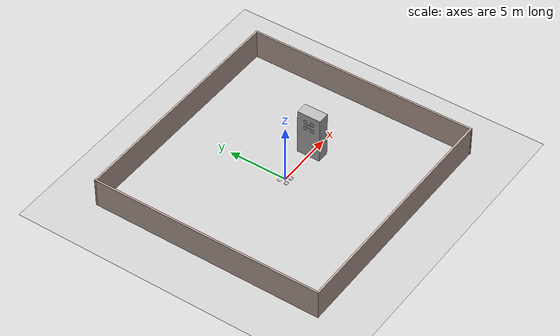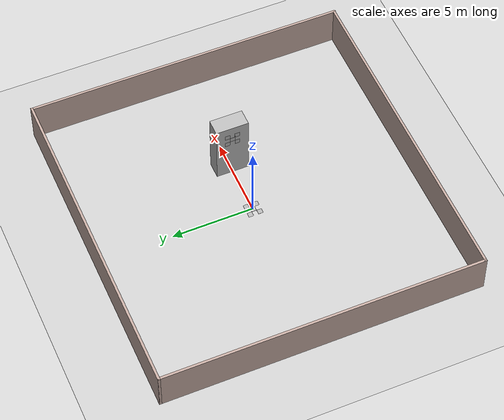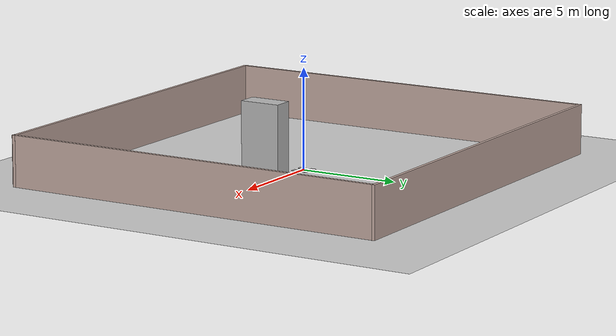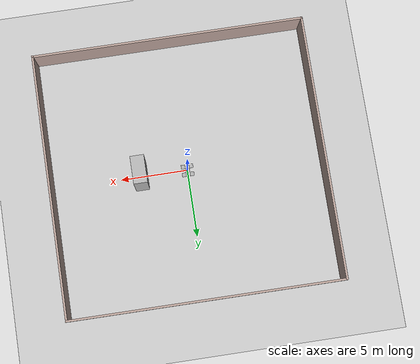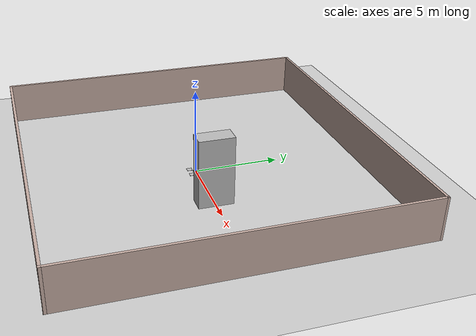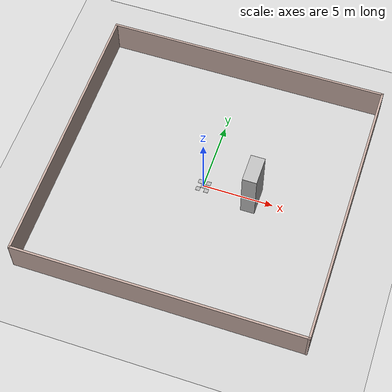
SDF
<sdf version="1.4">
 <world name="Localization">
  <include><uri>model://ground_plane</uri></include>
  <include><uri>model://sun</uri></include>
  <include><uri>model://Lo_Tag</uri></include>
  <plugin name="ros_interface_plugin" filename="librotors_gazebo_ros_interface_plugin.so"/>
  <plugin name="ros_link_attacher_plugin" filename="libgazebo_ros_link_attacher.so"/>
  <spherical_coordinates>
   <surface_model>EARTH_WGS84</surface_model>
   <latitude_deg>47.3667</latitude_deg>
   <longitude_deg>8.5500</longitude_deg>
   <elevation>500.0</elevation>
   <heading_deg>0</heading_deg>
  </spherical_coordinates>
  <physics type="ode">
   <ode>
    <solver><type>quick</type><iters>1000</iters><sor>1.3</sor></solver>
    <constraints>
     <cfm>0</cfm>
     <erp>0.2</erp>
     <contact_max_correcting_vel>100</contact_max_correcting_vel>
     <contact_surface_layer>0.001</contact_surface_layer>
    </constraints>
   </ode>
   <max_step_size>0.01</max_step_size>
   <real_time_factor>1</real_time_factor>
   <real_time_update_rate>100</real_time_update_rate>
   <gravity>0 0 -9.8</gravity>
  </physics>
  <model name="Room1">
   <pose>0.052821 0.021612 0 0 -0 0</pose>
   <link name="Wall_5">
    <collision name="Wall_5_Collision">
     <geometry><box><size>20.2375 0.15 2.5</size></box></geometry>
     <pose>0 0 1.25 0 -0 0</pose>
    </collision>
    <visual name="Wall_5_Visual">
     <pose>0 0 1.25 0 -0 0</pose>
     <geometry><box><size>20.2375 0.15 2.5</size></box></geometry>
     <material>
      <script><uri>file://media/materials/scripts/gazebo.material</uri><name>Gazebo/Grey</name></script>
      <ambient>0.760784 0.662745 0.627451 1</ambient>
     </material>
     <meta><layer>0</layer></meta>
    </visual>
    <pose>0.00159 9.72367 0 0 -0 -0.001065</pose>
   </link>
   <link name="Wall_6">
    <collision name="Wall_6_Collision">
     <geometry><box><size>19.5759 0.15 2.5</size></box></geometry>
     <pose>0 0 1.25 0 -0 0</pose>
    </collision>
    <visual name="Wall_6_Visual">
     <pose>0 0 1.25 0 -0 0</pose>
     <geometry><box><size>19.5759 0.15 2.5</size></box></geometry>
     <material>
      <script><uri>file://media/materials/scripts/gazebo.material</uri><name>Gazebo/Grey</name></script>
      <ambient>0.760784 0.662745 0.627451 1</ambient>
     </material>
     <meta><layer>0</layer></meta>
    </visual>
    <pose>10.0461 -0.021509 0 0 -0 -1.57071</pose>
   </link>
   <link name="Wall_7">
    <collision name="Wall_7_Collision">
     <geometry><box><size>20.2388 0.15 2.5</size></box></geometry>
     <pose>0 0 1.25 0 -0 0</pose>
    </collision>
    <visual name="Wall_7_Visual">
     <pose>0 0 1.25 0 -0 0</pose>
     <geometry><box><size>20.2388 0.15 2.5</size></box></geometry>
     <material>
      <script><uri>file://media/materials/scripts/gazebo.material</uri><name>Gazebo/Grey</name></script>
      <ambient>0.760784 0.662745 0.627451 1</ambient>
     </material>
     <meta><layer>0</layer></meta>
    </visual>
    <pose>0.002679 -9.71325 0 0 -0 -3.14155</pose>
   </link>
   <link name="Wall_8">
    <collision name="Wall_8_Collision">
     <geometry><box><size>19.5906 0.15 2.5</size></box></geometry>
     <pose>0 0 1.25 0 -0 0</pose>
    </collision>
    <visual name="Wall_8_Visual">
     <pose>0 0 1.25 0 -0 0</pose>
     <geometry><box><size>19.5906 0.15 2.5</size></box></geometry>
     <material>
      <script><uri>file://media/materials/scripts/gazebo.material</uri><name>Gazebo/Grey</name></script>
      <ambient>0.760784 0.662745 0.627451 1</ambient>
     </material>
     <meta><layer>0</layer></meta>
    </visual>
    <pose>-10.0446 0.006648 0 0 -0 1.57054</pose>
   </link>
   <static>1</static>
  </model>
 </world>
</sdf>

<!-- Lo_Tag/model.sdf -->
<sdf version="1.4">

	<model name='localization_tags'>

		<static>True</static>

		<link name="tag_0">

			<pose>0 0 0 0 1.5713 1.5713</pose>

			<inertial>
	        	<mass>0.1</mass>

	        	<inertia>
					<ixx>0.0166667</ixx>
					<ixy>0</ixy>
					<ixz>0</ixz>
					<iyy>0.0166667</iyy>
					<iyz>0</iyz>
					<izz>0.0166667</izz>
        		</inertia>

        		<pose frame=''>0 0 0 0 -0 0</pose>
      		</inertial>

			<pose frame=''>0 0 0 0 -0 0</pose>
			<gravity>1</gravity>
			<self_collide>0</self_collide>
			<kinematic>0</kinematic>
			<enable_wind>0</enable_wind>

			<visual name='visual_0'>
				<pose frame=''>0 0 0 0 -0 0</pose>

		        <geometry>
		        	<box>
		        	<size>0.01 0.3 0.3</size>
		        	</box>
		        </geometry>

		        <material>
		        	<lighting>0</lighting>

		        	<script>
		        		<uri>models://media/materials/scripts/Apriltag.material</uri>
		        		<name>Apriltag/id0</name>
		          	</script>

		        	<shader type='vertex'>
		        		<normal_map>__default__</normal_map>
		          	</shader>

		        	<ambient>0.3 0.3 0.3 1</ambient>
		        	<diffuse>0.7 0.7 0.7 1</diffuse>
		        	<specular>0.01 0.01 0.01 1</specular>
		        	<emissive>0 0 0 1</emissive>
		        </material>

		        <transparency>0</transparency>
		        <cast_shadows>1</cast_shadows>
			</visual>

			<collision name='collision_0'>
				<laser_retro>0</laser_retro>
        		<max_contacts>10</max_contacts>
        		<pose frame=''>0 0 0 0 -0 0</pose>

		        <geometry>
		        	<box>
		        		<size>0.01 0.3 0.3</size>
		        	</box>
		        </geometry>

		        <surface>
		        	<friction>
		            	<ode>
		            		<mu>1</mu>
		            		<mu2>1</mu2>
		            		<fdir1>0 0 0</fdir1>
		            		<slip1>0</slip1>
		            		<slip2>0</slip2>
		            	</ode>

		           		<torsional>
		            		<coefficient>1</coefficient>
	            			<patch_radius>0</patch_radius>
	            			<surface_radius>0</surface_radius>
	            			<use_patch_radius>1</use_patch_radius>

	            			<ode>
		                		<slip>0</slip>
		              		</ode>
		            	</torsional>
		          	</friction>

		        	<bounce>
		            	<restitution_coefficient>0</restitution_coefficient>
		            	<threshold>1e+06</threshold>
		        	</bounce>

		        	<contact>
		            	<collide_without_contact>0</collide_without_contact>
		            	<collide_without_contact_bitmask>1</collide_without_contact_bitmask>
		            	<collide_bitmask>1</collide_bitmask>

		            	<ode>
		            		<soft_cfm>0</soft_cfm>
		            		<soft_erp>0.2</soft_erp>
		            		<kp>1e+13</kp>
		            		<kd>1</kd>
		            		<max_vel>0.01</max_vel>
		            		<min_depth>0</min_depth>
		            	</ode>

			            <bullet>
			            	<split_impulse>1</split_impulse>
			            	<split_impulse_penetration_threshold>-0.01</split_impulse_penetration_threshold>
			            	<soft_cfm>0</soft_cfm>
			            	<soft_erp>0.2</soft_erp>
			            	<kp>1e+13</kp>
			            	<kd>1</kd>
			            </bullet>
		        	</contact>
		        </surface>
		    </collision>
		</link>

		<link name="tag_1">

			<pose>0.3 -0.3 0 0 1.5713 1.5713</pose>

			<inertial>
	        	<mass>0.1</mass>

	        	<inertia>
					<ixx>0.0166667</ixx>
					<ixy>0</ixy>
					<ixz>0</ixz>
					<iyy>0.0166667</iyy>
					<iyz>0</iyz>
					<izz>0.0166667</izz>
        		</inertia>

        		<pose frame=''>0 0 0 0 -0 0</pose>
      		</inertial>

			<pose frame=''>0 0 0 0 -0 0</pose>
			<gravity>1</gravity>
			<self_collide>0</self_collide>
			<kinematic>0</kinematic>
			<enable_wind>0</enable_wind>

 			<visual name='visual_1'>
				<pose frame=''>0 0 0 0 -0 0</pose>

		        <geometry>
		        	<box>
		        	<size>0.01 0.3 0.3</size>
		        	</box>
		        </geometry>

		        <material>
		        	<lighting>0</lighting>

		        	<script>
		        		<uri>models://media/materials/scripts/Apriltag.material</uri>
		        		<name>Apriltag/id1</name>
		          	</script>

		        	<shader type='vertex'>
		        		<normal_map>__default__</normal_map>
		          	</shader>

		        	<ambient>0.3 0.3 0.3 1</ambient>
		        	<diffuse>0.7 0.7 0.7 1</diffuse>
		        	<specular>0.01 0.01 0.01 1</specular>
		        	<emissive>0 0 0 1</emissive>
		        </material>

		        <transparency>0</transparency>
		        <cast_shadows>1</cast_shadows>
			</visual>

			<collision name='collision_1'>
				<laser_retro>0</laser_retro>
        		<max_contacts>10</max_contacts>
        		<pose frame=''>0 0 0 0 -0 0</pose>

		        <geometry>
		        	<box>
		        		<size>0.01 0.3 0.3</size>
		        	</box>
		        </geometry>

		        <surface>
		        	<friction>
		            	<ode>
		            		<mu>1</mu>
		            		<mu2>1</mu2>
		            		<fdir1>0 0 0</fdir1>
		            		<slip1>0</slip1>
		            		<slip2>0</slip2>
		            	</ode>

		           		<torsional>
		            		<coefficient>1</coefficient>
	            			<patch_radius>0</patch_radius>
	            			<surface_radius>0</surface_radius>
	            			<use_patch_radius>1</use_patch_radius>

	            			<ode>
		                		<slip>0</slip>
		              		</ode>
		            	</torsional>
		          	</friction>

		        	<bounce>
		            	<restitution_coefficient>0</restitution_coefficient>
		            	<threshold>1e+06</threshold>
		        	</bounce>

		        	<contact>
		            	<collide_without_contact>0</collide_without_contact>
		            	<collide_without_contact_bitmask>1</collide_without_contact_bitmask>
		            	<collide_bitmask>1</collide_bitmask>

		            	<ode>
		            		<soft_cfm>0</soft_cfm>
		            		<soft_erp>0.2</soft_erp>
		            		<kp>1e+13</kp>
		            		<kd>1</kd>
		            		<max_vel>0.01</max_vel>
		            		<min_depth>0</min_depth>
		            	</ode>

			            <bullet>
			            	<split_impulse>1</split_impulse>
			            	<split_impulse_penetration_threshold>-0.01</split_impulse_penetration_threshold>
			            	<soft_cfm>0</soft_cfm>
			            	<soft_erp>0.2</soft_erp>
			            	<kp>1e+13</kp>
			            	<kd>1</kd>
			            </bullet>
		        	</contact>
		        </surface>
		    </collision>
		</link>

		<link name="tag_2">

			<pose>0.3 0.3 0 0 1.5713 1.5713</pose>

			<inertial>
	        	<mass>0.1</mass>

	        	<inertia>
					<ixx>0.0166667</ixx>
					<ixy>0</ixy>
					<ixz>0</ixz>
					<iyy>0.0166667</iyy>
					<iyz>0</iyz>
					<izz>0.0166667</izz>
        		</inertia>

        		<pose frame=''>0 0 0 0 -0 0</pose>
      		</inertial>

			<pose frame=''>0 0 0 0 -0 0</pose>
			<gravity>1</gravity>
			<self_collide>0</self_collide>
			<kinematic>0</kinematic>
			<enable_wind>0</enable_wind>

			<visual name='visual_2'>
				<pose frame=''>0 0 0 0 -0 0</pose>

		        <geometry>
		        	<box>
		        	<size>0.01 0.3 0.3</size>
		        	</box>
		        </geometry>

		        <material>
		        	<lighting>0</lighting>

		        	<script>
		        		<uri>models://media/materials/scripts/Apriltag.material</uri>
		        		<name>Apriltag/id2</name>
		          	</script>

		        	<shader type='vertex'>
		        		<normal_map>__default__</normal_map>
		          	</shader>

		        	<ambient>0.3 0.3 0.3 1</ambient>
		        	<diffuse>0.7 0.7 0.7 1</diffuse>
		        	<specular>0.01 0.01 0.01 1</specular>
		        	<emissive>0 0 0 1</emissive>
		        </material>

		        <transparency>0</transparency>
		        <cast_shadows>1</cast_shadows>
			</visual>

			<collision name='collision_2'>
				<laser_retro>0</laser_retro>
        		<max_contacts>10</max_contacts>
        		<pose frame=''>0 0 0 0 -0 0</pose>

		        <geometry>
		        	<box>
		        		<size>0.01 0.3 0.3</size>
		        	</box>
		        </geometry>

		        <surface>
		        	<friction>
		            	<ode>
		            		<mu>1</mu>
		            		<mu2>1</mu2>
		            		<fdir1>0 0 0</fdir1>
		            		<slip1>0</slip1>
		            		<slip2>0</slip2>
		            	</ode>

		           		<torsional>
		            		<coefficient>1</coefficient>
	            			<patch_radius>0</patch_radius>
	            			<surface_radius>0</surface_radius>
	            			<use_patch_radius>1</use_patch_radius>

	            			<ode>
		                		<slip>0</slip>
		              		</ode>
		            	</torsional>
		          	</friction>

		        	<bounce>
		            	<restitution_coefficient>0</restitution_coefficient>
		            	<threshold>1e+06</threshold>
		        	</bounce>

		        	<contact>
		            	<collide_without_contact>0</collide_without_contact>
		            	<collide_without_contact_bitmask>1</collide_without_contact_bitmask>
		            	<collide_bitmask>1</collide_bitmask>

		            	<ode>
		            		<soft_cfm>0</soft_cfm>
		            		<soft_erp>0.2</soft_erp>
		            		<kp>1e+13</kp>
		            		<kd>1</kd>
		            		<max_vel>0.01</max_vel>
		            		<min_depth>0</min_depth>
		            	</ode>

			            <bullet>
			            	<split_impulse>1</split_impulse>
			            	<split_impulse_penetration_threshold>-0.01</split_impulse_penetration_threshold>
			            	<soft_cfm>0</soft_cfm>
			            	<soft_erp>0.2</soft_erp>
			            	<kp>1e+13</kp>
			            	<kd>1</kd>
			            </bullet>
		        	</contact>
		        </surface>
		    </collision>
		</link>

		<link name="tag_3">

			<pose>-0.3 0.3 0 0 1.5713 1.5713</pose>

			<inertial>
	        	<mass>0.1</mass>

	        	<inertia>
					<ixx>0.0166667</ixx>
					<ixy>0</ixy>
					<ixz>0</ixz>
					<iyy>0.0166667</iyy>
					<iyz>0</iyz>
					<izz>0.0166667</izz>
        		</inertia>

        		<pose frame=''>0 0 0 0 -0 0</pose>
      		</inertial>

			<pose frame=''>0 0 0 0 -0 0</pose>
			<gravity>1</gravity>
			<self_collide>0</self_collide>
			<kinematic>0</kinematic>
			<enable_wind>0</enable_wind>

			<visual name='visual_3'>
				<pose frame=''>0 0 0 0 -0 0</pose>

		        <geometry>
		        	<box>
		        	<size>0.01 0.3 0.3</size>
		        	</box>
		        </geometry>

		        <material>
		        	<lighting>0</lighting>

		        	<script>
		        		<uri>models://media/materials/scripts/Apriltag.material</uri>
		        		<name>Apriltag/id3</name>
		          	</script>

		        	<shader type='vertex'>
		        		<normal_map>__default__</normal_map>
		          	</shader>

		        	<ambient>0.3 0.3 0.3 1</ambient>
		        	<diffuse>0.7 0.7 0.7 1</diffuse>
		        	<specular>0.01 0.01 0.01 1</specular>
		        	<emissive>0 0 0 1</emissive>
		        </material>

		        <transparency>0</transparency>
		        <cast_shadows>1</cast_shadows>
			</visual>

			<collision name='collision_3'>
				<laser_retro>0</laser_retro>
        		<max_contacts>10</max_contacts>
        		<pose frame=''>0 0 0 0 -0 0</pose>

		        <geometry>
		        	<box>
		        		<size>0.01 0.3 0.3</size>
		        	</box>
		        </geometry>

		        <surface>
		        	<friction>
		            	<ode>
		            		<mu>1</mu>
		            		<mu2>1</mu2>
		            		<fdir1>0 0 0</fdir1>
		            		<slip1>0</slip1>
		            		<slip2>0</slip2>
		            	</ode>

		           		<torsional>
		            		<coefficient>1</coefficient>
	            			<patch_radius>0</patch_radius>
	            			<surface_radius>0</surface_radius>
	            			<use_patch_radius>1</use_patch_radius>

	            			<ode>
		                		<slip>0</slip>
		              		</ode>
		            	</torsional>
		          	</friction>

		        	<bounce>
		            	<restitution_coefficient>0</restitution_coefficient>
		            	<threshold>1e+06</threshold>
		        	</bounce>

		        	<contact>
		            	<collide_without_contact>0</collide_without_contact>
		            	<collide_without_contact_bitmask>1</collide_without_contact_bitmask>
		            	<collide_bitmask>1</collide_bitmask>

		            	<ode>
		            		<soft_cfm>0</soft_cfm>
		            		<soft_erp>0.2</soft_erp>
		            		<kp>1e+13</kp>
		            		<kd>1</kd>
		            		<max_vel>0.01</max_vel>
		            		<min_depth>0</min_depth>
		            	</ode>

			            <bullet>
			            	<split_impulse>1</split_impulse>
			            	<split_impulse_penetration_threshold>-0.01</split_impulse_penetration_threshold>
			            	<soft_cfm>0</soft_cfm>
			            	<soft_erp>0.2</soft_erp>
			            	<kp>1e+13</kp>
			            	<kd>1</kd>
			            </bullet>
		        	</contact>
		        </surface>
		    </collision>
		</link>

		<link name="tag_4">

			<pose>-0.3 -0.3 0 0 1.5713 1.5713</pose>

			<inertial>
	        	<mass>0.1</mass>

	        	<inertia>
					<ixx>0.0166667</ixx>
					<ixy>0</ixy>
					<ixz>0</ixz>
					<iyy>0.0166667</iyy>
					<iyz>0</iyz>
					<izz>0.0166667</izz>
        		</inertia>

        		<pose frame=''>0 0 0 0 -0 0</pose>
      		</inertial>

			<pose frame=''>0 0 0 0 -0 0</pose>
			<gravity>1</gravity>
			<self_collide>0</self_collide>
			<kinematic>0</kinematic>
			<enable_wind>0</enable_wind>

			<visual name='visual_4'>
				<pose frame=''>0 0 0 0 -0 0</pose>

		        <geometry>
		        	<box>
		        	<size>0.01 0.3 0.3</size>
		        	</box>
		        </geometry>

		        <material>
		        	<lighting>0</lighting>

		        	<script>
		        		<uri>models://media/materials/scripts/Apriltag.material</uri>
		        		<name>Apriltag/id4</name>
		          	</script>

		        	<shader type='vertex'>
		        		<normal_map>__default__</normal_map>
		          	</shader>

		        	<ambient>0.3 0.3 0.3 1</ambient>
		        	<diffuse>0.7 0.7 0.7 1</diffuse>
		        	<specular>0.01 0.01 0.01 1</specular>
		        	<emissive>0 0 0 1</emissive>
		        </material>

		        <transparency>0</transparency>
		        <cast_shadows>1</cast_shadows>
			</visual>

			<collision name='collision_4'>
				<laser_retro>0</laser_retro>
        		<max_contacts>10</max_contacts>
        		<pose frame=''>0 0 0 0 -0 0</pose>

		        <geometry>
		        	<box>
		        		<size>0.01 0.3 0.3</size>
		        	</box>
		        </geometry>

		        <surface>
		        	<friction>
		            	<ode>
		            		<mu>1</mu>
		            		<mu2>1</mu2>
		            		<fdir1>0 0 0</fdir1>
		            		<slip1>0</slip1>
		            		<slip2>0</slip2>
		            	</ode>

		           		<torsional>
		            		<coefficient>1</coefficient>
	            			<patch_radius>0</patch_radius>
	            			<surface_radius>0</surface_radius>
	            			<use_patch_radius>1</use_patch_radius>

	            			<ode>
		                		<slip>0</slip>
		              		</ode>
		            	</torsional>
		          	</friction>

		        	<bounce>
		            	<restitution_coefficient>0</restitution_coefficient>
		            	<threshold>1e+06</threshold>
		        	</bounce>

		        	<contact>
		            	<collide_without_contact>0</collide_without_contact>
		            	<collide_without_contact_bitmask>1</collide_without_contact_bitmask>
		            	<collide_bitmask>1</collide_bitmask>

		            	<ode>
		            		<soft_cfm>0</soft_cfm>
		            		<soft_erp>0.2</soft_erp>
		            		<kp>1e+13</kp>
		            		<kd>1</kd>
		            		<max_vel>0.01</max_vel>
		            		<min_depth>0</min_depth>
		            	</ode>

			            <bullet>
			            	<split_impulse>1</split_impulse>
			            	<split_impulse_penetration_threshold>-0.01</split_impulse_penetration_threshold>
			            	<soft_cfm>0</soft_cfm>
			            	<soft_erp>0.2</soft_erp>
			            	<kp>1e+13</kp>
			            	<kd>1</kd>
			            </bullet>
		        	</contact>
		        </surface>
		    </collision>
		</link>

		<link name="tag_5">

			<pose>3 0 3 -1.5713 0 0</pose>

			<inertial>
	        	<mass>0.1</mass>

	        	<inertia>
					<ixx>0.0166667</ixx>
					<ixy>0</ixy>
					<ixz>0</ixz>
					<iyy>0.0166667</iyy>
					<iyz>0</iyz>
					<izz>0.0166667</izz>
        		</inertia>

        		<pose frame=''>0 0 0 0 -0 0</pose>
      		</inertial>

			<pose frame=''>0 0 0 0 -0 0</pose>
			<gravity>1</gravity>
			<self_collide>0</self_collide>
			<kinematic>0</kinematic>
			<enable_wind>0</enable_wind>

			<visual name='visual_5'>
				<pose frame=''>0 0 0 0 -0 0</pose>

		        <geometry>
		        	<box>
		        	<size>0.01 0.3 0.3</size>
		        	</box>
		        </geometry>

		        <material>
		        	<lighting>0</lighting>

		        	<script>
		        		<uri>models://media/materials/scripts/Apriltag.material</uri>
		        		<name>Apriltag/id5</name>
		          	</script>

		        	<shader type='vertex'>
		        		<normal_map>__default__</normal_map>
		          	</shader>

		        	<ambient>0.3 0.3 0.3 1</ambient>
		        	<diffuse>0.7 0.7 0.7 1</diffuse>
		        	<specular>0.01 0.01 0.01 1</specular>
		        	<emissive>0 0 0 1</emissive>
		        </material>

		        <transparency>0</transparency>
		        <cast_shadows>1</cast_shadows>
			</visual>

			<collision name='collision_5'>
				<laser_retro>0</laser_retro>
        		<max_contacts>10</max_contacts>
        		<pose frame=''>0 0 0 0 -0 0</pose>

		        <geometry>
		        	<box>
		        		<size>0.01 0.3 0.3</size>
		        	</box>
		        </geometry>

		        <surface>
		        	<friction>
		            	<ode>
		            		<mu>1</mu>
		            		<mu2>1</mu2>
		            		<fdir1>0 0 0</fdir1>
		            		<slip1>0</slip1>
		            		<slip2>0</slip2>
		            	</ode>

		           		<torsional>
		            		<coefficient>1</coefficient>
	            			<patch_radius>0</patch_radius>
	            			<surface_radius>0</surface_radius>
	            			<use_patch_radius>1</use_patch_radius>

	            			<ode>
		                		<slip>0</slip>
		              		</ode>
		            	</torsional>
		          	</friction>

		        	<bounce>
		            	<restitution_coefficient>0</restitution_coefficient>
		            	<threshold>1e+06</threshold>
		        	</bounce>

		        	<contact>
		            	<collide_without_contact>0</collide_without_contact>
		            	<collide_without_contact_bitmask>1</collide_without_contact_bitmask>
		            	<collide_bitmask>1</collide_bitmask>

		            	<ode>
		            		<soft_cfm>0</soft_cfm>
		            		<soft_erp>0.2</soft_erp>
		            		<kp>1e+13</kp>
		            		<kd>1</kd>
		            		<max_vel>0.01</max_vel>
		            		<min_depth>0</min_depth>
		            	</ode>

			            <bullet>
			            	<split_impulse>1</split_impulse>
			            	<split_impulse_penetration_threshold>-0.01</split_impulse_penetration_threshold>
			            	<soft_cfm>0</soft_cfm>
			            	<soft_erp>0.2</soft_erp>
			            	<kp>1e+13</kp>
			            	<kd>1</kd>
			            </bullet>
		        	</contact>
		        </surface>
		    </collision>
		</link>
 -->
		<link name="tag_6">

			<pose>3 -0.3 3.3 -1.5713 0 0</pose>

			<inertial>
	        	<mass>0.1</mass>

	        	<inertia>
					<ixx>0.0166667</ixx>
					<ixy>0</ixy>
					<ixz>0</ixz>
					<iyy>0.0166667</iyy>
					<iyz>0</iyz>
					<izz>0.0166667</izz>
        		</inertia>

        		<pose frame=''>0 0 0 0 -0 0</pose>
      		</inertial>

			<pose frame=''>0 0 0 0 -0 0</pose>
			<gravity>1</gravity>
			<self_collide>0</self_collide>
			<kinematic>0</kinematic>
			<enable_wind>0</enable_wind>

			<visual name='visual_6'>
				<pose frame=''>0 0 0 0 -0 0</pose>

		        <geometry>
		        	<box>
		        	<size>0.01 0.3 0.3</size>
		        	</box>
		        </geometry>

		        <material>
		        	<lighting>0</lighting>

		        	<script>
		        		<uri>models://media/materials/scripts/Apriltag.material</uri>
		        		<name>Apriltag/id6</name>
		          	</script>

		        	<shader type='vertex'>
		        		<normal_map>__default__</normal_map>
		          	</shader>

		        	<ambient>0.3 0.3 0.3 1</ambient>
		        	<diffuse>0.7 0.7 0.7 1</diffuse>
		        	<specular>0.01 0.01 0.01 1</specular>
		        	<emissive>0 0 0 1</emissive>
		        </material>

		        <transparency>0</transparency>
		        <cast_shadows>1</cast_shadows>
			</visual>

			<collision name='collision_6'>
				<laser_retro>0</laser_retro>
        		<max_contacts>10</max_contacts>
        		<pose frame=''>0 0 0 0 -0 0</pose>

		        <geometry>
		        	<box>
		        		<size>0.01 0.3 0.3</size>
		        	</box>
		        </geometry>

		        <surface>
		        	<friction>
		            	<ode>
		            		<mu>1</mu>
		            		<mu2>1</mu2>
		            		<fdir1>0 0 0</fdir1>
		            		<slip1>0</slip1>
		            		<slip2>0</slip2>
		            	</ode>

		           		<torsional>
		            		<coefficient>1</coefficient>
	            			<patch_radius>0</patch_radius>
	            			<surface_radius>0</surface_radius>
	            			<use_patch_radius>1</use_patch_radius>

	            			<ode>
		                		<slip>0</slip>
		              		</ode>
		            	</torsional>
		          	</friction>

		        	<bounce>
		            	<restitution_coefficient>0</restitution_coefficient>
		            	<threshold>1e+06</threshold>
		        	</bounce>

		        	<contact>
		            	<collide_without_contact>0</collide_without_contact>
		            	<collide_without_contact_bitmask>1</collide_without_contact_bitmask>
		            	<collide_bitmask>1</collide_bitmask>

		            	<ode>
		            		<soft_cfm>0</soft_cfm>
		            		<soft_erp>0.2</soft_erp>
		            		<kp>1e+13</kp>
		            		<kd>1</kd>
		            		<max_vel>0.01</max_vel>
		            		<min_depth>0</min_depth>
		            	</ode>

			            <bullet>
			            	<split_impulse>1</split_impulse>
			            	<split_impulse_penetration_threshold>-0.01</split_impulse_penetration_threshold>
			            	<soft_cfm>0</soft_cfm>
			            	<soft_erp>0.2</soft_erp>
			            	<kp>1e+13</kp>
			            	<kd>1</kd>
			            </bullet>
		        	</contact>
		        </surface>
		    </collision>
		</link>

		<link name="tag_7">

			<pose>3 0.3 3.3 -1.5713 0 0</pose>

			<inertial>
	        	<mass>0.1</mass>

	        	<inertia>
					<ixx>0.0166667</ixx>
					<ixy>0</ixy>
					<ixz>0</ixz>
					<iyy>0.0166667</iyy>
					<iyz>0</iyz>
					<izz>0.0166667</izz>
        		</inertia>

        		<pose frame=''>0 0 0 0 -0 0</pose>
      		</inertial>

			<pose frame=''>0 0 0 0 -0 0</pose>
			<gravity>1</gravity>
			<self_collide>0</self_collide>
			<kinematic>0</kinematic>
			<enable_wind>0</enable_wind>

			<visual name='visual_7'>
				<pose frame=''>0 0 0 0 -0 0</pose>

		        <geometry>
		        	<box>
		        	<size>0.01 0.3 0.3</size>
		        	</box>
		        </geometry>

		        <material>
		        	<lighting>0</lighting>

		        	<script>
		        		<uri>models://media/materials/scripts/Apriltag.material</uri>
		        		<name>Apriltag/id7</name>
		          	</script>

		        	<shader type='vertex'>
		        		<normal_map>__default__</normal_map>
		          	</shader>

		        	<ambient>0.3 0.3 0.3 1</ambient>
		        	<diffuse>0.7 0.7 0.7 1</diffuse>
		        	<specular>0.01 0.01 0.01 1</specular>
		        	<emissive>0 0 0 1</emissive>
		        </material>

		        <transparency>0</transparency>
		        <cast_shadows>1</cast_shadows>
			</visual>

			<collision name='collision_7'>
				<laser_retro>0</laser_retro>
        		<max_contacts>10</max_contacts>
        		<pose frame=''>0 0 0 0 -0 0</pose>

		        <geometry>
		        	<box>
		        		<size>0.01 0.3 0.3</size>
		        	</box>
		        </geometry>

		        <surface>
		        	<friction>
		            	<ode>
		            		<mu>1</mu>
		            		<mu2>1</mu2>
		            		<fdir1>0 0 0</fdir1>
		            		<slip1>0</slip1>
		            		<slip2>0</slip2>
		            	</ode>

		           		<torsional>
		            		<coefficient>1</coefficient>
	            			<patch_radius>0</patch_radius>
	            			<surface_radius>0</surface_radius>
	            			<use_patch_radius>1</use_patch_radius>

	            			<ode>
		                		<slip>0</slip>
		              		</ode>
		            	</torsional>
		          	</friction>

		        	<bounce>
		            	<restitution_coefficient>0</restitution_coefficient>
		            	<threshold>1e+06</threshold>
		        	</bounce>

		        	<contact>
		            	<collide_without_contact>0</collide_without_contact>
		            	<collide_without_contact_bitmask>1</collide_without_contact_bitmask>
		            	<collide_bitmask>1</collide_bitmask>

		            	<ode>
		            		<soft_cfm>0</soft_cfm>
		            		<soft_erp>0.2</soft_erp>
		            		<kp>1e+13</kp>
		            		<kd>1</kd>
		            		<max_vel>0.01</max_vel>
		            		<min_depth>0</min_depth>
		            	</ode>

			            <bullet>
			            	<split_impulse>1</split_impulse>
			            	<split_impulse_penetration_threshold>-0.01</split_impulse_penetration_threshold>
			            	<soft_cfm>0</soft_cfm>
			            	<soft_erp>0.2</soft_erp>
			            	<kp>1e+13</kp>
			            	<kd>1</kd>
			            </bullet>
		        	</contact>
		        </surface>
		    </collision>
		</link>

		<link name="tag_8">

			<pose>3 0.3 2.7 -1.5713 0 0</pose>

			<inertial>
	        	<mass>0.1</mass>

	        	<inertia>
					<ixx>0.0166667</ixx>
					<ixy>0</ixy>
					<ixz>0</ixz>
					<iyy>0.0166667</iyy>
					<iyz>0</iyz>
					<izz>0.0166667</izz>
        		</inertia>

        		<pose frame=''>0 0 0 0 -0 0</pose>
      		</inertial>

			<pose frame=''>0 0 0 0 -0 0</pose>
			<gravity>1</gravity>
			<self_collide>0</self_collide>
			<kinematic>0</kinematic>
			<enable_wind>0</enable_wind>

			<visual name='visual_8'>
				<pose frame=''>0 0 0 0 -0 0</pose>

		        <geometry>
		        	<box>
		        	<size>0.01 0.3 0.3</size>
		        	</box>
		        </geometry>

		        <material>
		        	<lighting>0</lighting>

		        	<script>
		        		<uri>models://media/materials/scripts/Apriltag.material</uri>
		        		<name>Apriltag/id8</name>
		          	</script>

		        	<shader type='vertex'>
		        		<normal_map>__default__</normal_map>
		          	</shader>

		        	<ambient>0.3 0.3 0.3 1</ambient>
		        	<diffuse>0.7 0.7 0.7 1</diffuse>
		        	<specular>0.01 0.01 0.01 1</specular>
		        	<emissive>0 0 0 1</emissive>
		        </material>

		        <transparency>0</transparency>
		        <cast_shadows>1</cast_shadows>
			</visual>

			<collision name='collision_8'>
				<laser_retro>0</laser_retro>
        		<max_contacts>10</max_contacts>
        		<pose frame=''>0 0 0 0 -0 0</pose>

		        <geometry>
		        	<box>
		        		<size>0.01 0.3 0.3</size>
		        	</box>
		        </geometry>

		        <surface>
		        	<friction>
		            	<ode>
		            		<mu>1</mu>
		            		<mu2>1</mu2>
		            		<fdir1>0 0 0</fdir1>
		            		<slip1>0</slip1>
		            		<slip2>0</slip2>
		            	</ode>

		           		<torsional>
		            		<coefficient>1</coefficient>
	            			<patch_radius>0</patch_radius>
	            			<surface_radius>0</surface_radius>
	            			<use_patch_radius>1</use_patch_radius>

	            			<ode>
		                		<slip>0</slip>
		              		</ode>
		            	</torsional>
		          	</friction>

		        	<bounce>
		            	<restitution_coefficient>0</restitution_coefficient>
		            	<threshold>1e+06</threshold>
		        	</bounce>

		        	<contact>
		            	<collide_without_contact>0</collide_without_contact>
		            	<collide_without_contact_bitmask>1</collide_without_contact_bitmask>
		            	<collide_bitmask>1</collide_bitmask>

		            	<ode>
		            		<soft_cfm>0</soft_cfm>
		            		<soft_erp>0.2</soft_erp>
		            		<kp>1e+13</kp>
		            		<kd>1</kd>
		            		<max_vel>0.01</max_vel>
		            		<min_depth>0</min_depth>
		            	</ode>

			            <bullet>
			            	<split_impulse>1</split_impulse>
			            	<split_impulse_penetration_threshold>-0.01</split_impulse_penetration_threshold>
			            	<soft_cfm>0</soft_cfm>
			            	<soft_erp>0.2</soft_erp>
			            	<kp>1e+13</kp>
			            	<kd>1</kd>
			            </bullet>
		        	</contact>
		        </surface>
		    </collision>
		</link>

		<link name="tag_9">

			<pose>3 -0.3 2.7 -1.5713 0 0</pose>

			<inertial>
	        	<mass>0.1</mass>

	        	<inertia>
					<ixx>0.0166667</ixx>
					<ixy>0</ixy>
					<ixz>0</ixz>
					<iyy>0.0166667</iyy>
					<iyz>0</iyz>
					<izz>0.0166667</izz>
        		</inertia>

        		<pose frame=''>0 0 0 0 -0 0</pose>
      		</inertial>

			<pose frame=''>0 0 0 0 -0 0</pose>
			<gravity>1</gravity>
			<self_collide>0</self_collide>
			<kinematic>0</kinematic>
			<enable_wind>0</enable_wind>

			<visual name='visual_9'>
				<pose frame=''>0 0 0 0 -0 0</pose>

		        <geometry>
		        	<box>
		        	<size>0.01 0.3 0.3</size>
		        	</box>
		        </geometry>

		        <material>
		        	<lighting>0</lighting>

		        	<script>
		        		<uri>models://media/materials/scripts/Apriltag.material</uri>
		        		<name>Apriltag/id9</name>
		          	</script>

		        	<shader type='vertex'>
		        		<normal_map>__default__</normal_map>
		          	</shader>

		        	<ambient>0.3 0.3 0.3 1</ambient>
		        	<diffuse>0.7 0.7 0.7 1</diffuse>
		        	<specular>0.01 0.01 0.01 1</specular>
		        	<emissive>0 0 0 1</emissive>
		        </material>

		        <transparency>0</transparency>
		        <cast_shadows>1</cast_shadows>
			</visual>

			<collision name='collision_9'>
				<laser_retro>0</laser_retro>
        		<max_contacts>10</max_contacts>
        		<pose frame=''>0 0 0 0 -0 0</pose>

		        <geometry>
		        	<box>
		        		<size>0.01 0.3 0.3</size>
		        	</box>
		        </geometry>

		        <surface>
		        	<friction>
		            	<ode>
		            		<mu>1</mu>
		            		<mu2>1</mu2>
		            		<fdir1>0 0 0</fdir1>
		            		<slip1>0</slip1>
		            		<slip2>0</slip2>
		            	</ode>

		           		<torsional>
		            		<coefficient>1</coefficient>
	            			<patch_radius>0</patch_radius>
	            			<surface_radius>0</surface_radius>
	            			<use_patch_radius>1</use_patch_radius>

	            			<ode>
		                		<slip>0</slip>
		              		</ode>
		            	</torsional>
		          	</friction>

		        	<bounce>
		            	<restitution_coefficient>0</restitution_coefficient>
		            	<threshold>1e+06</threshold>
		        	</bounce>

		        	<contact>
		            	<collide_without_contact>0</collide_without_contact>
		            	<collide_without_contact_bitmask>1</collide_without_contact_bitmask>
		            	<collide_bitmask>1</collide_bitmask>

		            	<ode>
		            		<soft_cfm>0</soft_cfm>
		            		<soft_erp>0.2</soft_erp>
		            		<kp>1e+13</kp>
		            		<kd>1</kd>
		            		<max_vel>0.01</max_vel>
		            		<min_depth>0</min_depth>
		            	</ode>

			            <bullet>
			            	<split_impulse>1</split_impulse>
			            	<split_impulse_penetration_threshold>-0.01</split_impulse_penetration_threshold>
			            	<soft_cfm>0</soft_cfm>
			            	<soft_erp>0.2</soft_erp>
			            	<kp>1e+13</kp>
			            	<kd>1</kd>
			            </bullet>
		        	</contact>
		        </surface>
		    </collision>
		</link>

		<link name="wall_1">

			<pose>3.5 0 2 0 0 0</pose>

			<inertial>
		      <mass value="0.0001" />
		      <inertia ixx="0.0001" ixy="0.0001" ixz="0.0001" iyy="0.0001" iyz="0.0001" izz="0.0001" />
		    </inertial>

			<visual name='visual_w'>
				<geometry>
					<box>
						<size>1 2 4</size>
					</box>
				</geometry>

			</visual>

			<collision name='collision_w'>
				<geometry>
					<box>
						<size>1 2 4</size>
					</box>
				</geometry>
		    </collision>

		</link>

		<joint name = "joint_5" type="fixed">
			<axis xyz="0 0 0" />
			<parent link="wall_1" />
			<child link="tag_5" />
	    </joint>

	    <joint name = "joint_6" type="fixed">
			<axis xyz="0 0 0" />
			<parent link="wall_1" />
			<child link="tag_6" />
	    </joint>

	    <joint name = "joint_7" type="fixed">
			<axis xyz="0 0 0" />
			<parent link="wall_1" />
			<child link="tag_7" />
	    </joint>

	    <joint name = "joint_8" type="fixed">
			<axis xyz="0 0 0" />
			<parent link="wall_1" />
			<child link="tag_8" />
	    </joint>

	    <joint name = "joint_9" type="fixed">
			<axis xyz="0 0 0" />
			<parent link="wall_1" />
			<child link="tag_9" />
	    </joint>

	</model>
</sdf>
